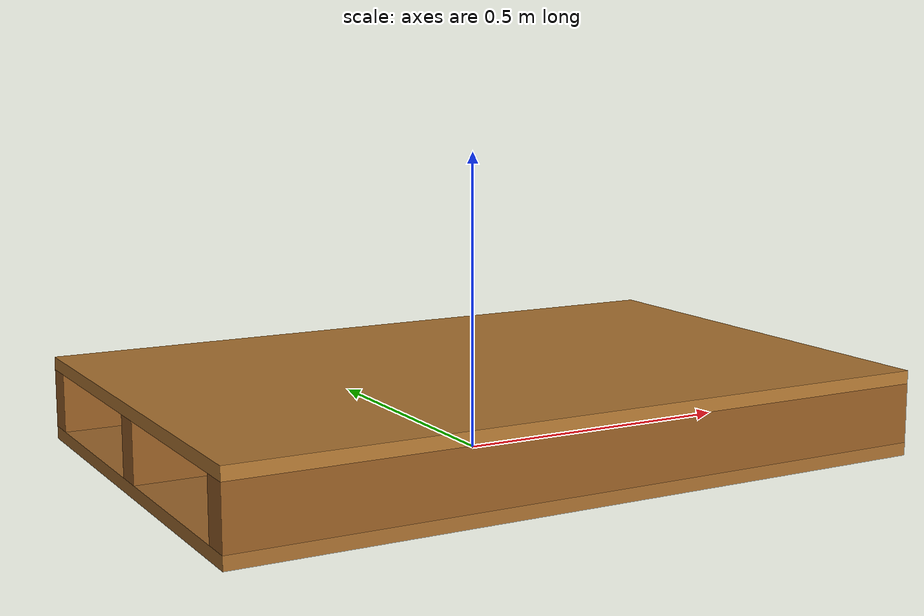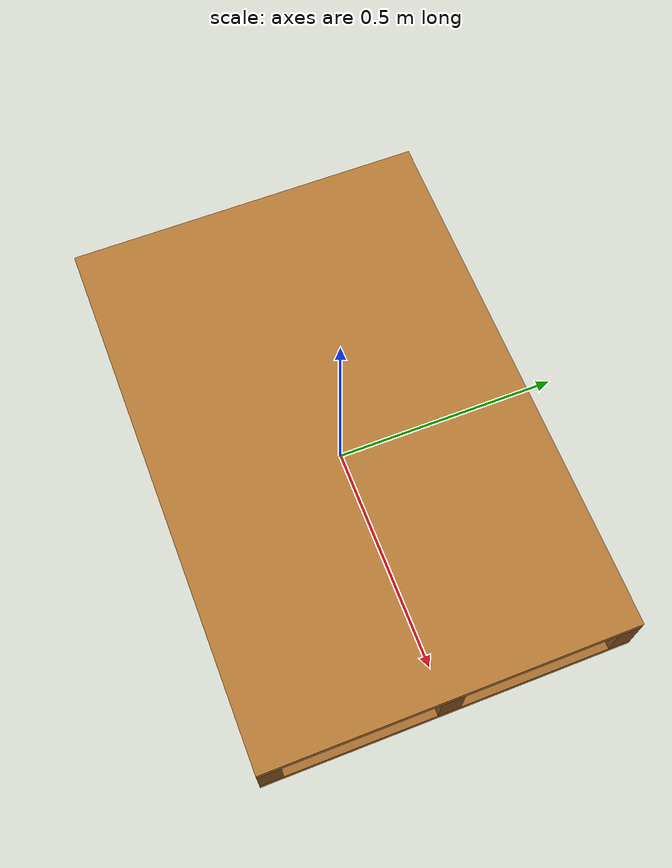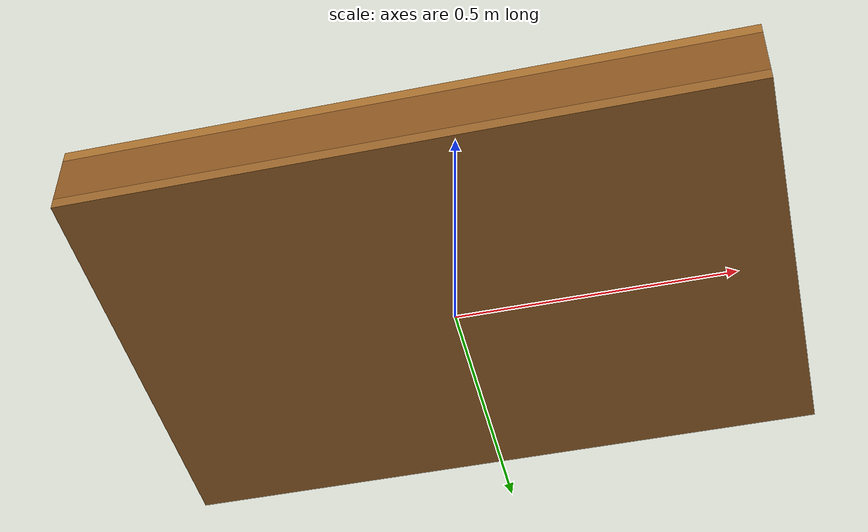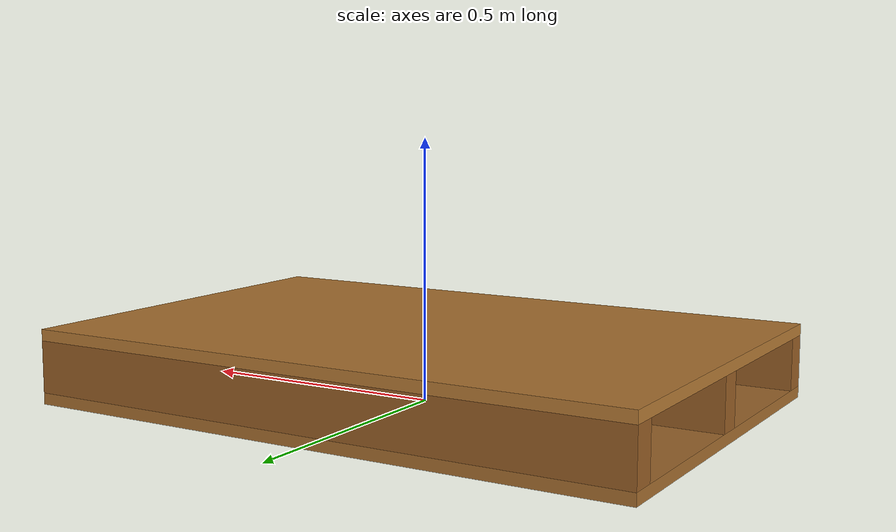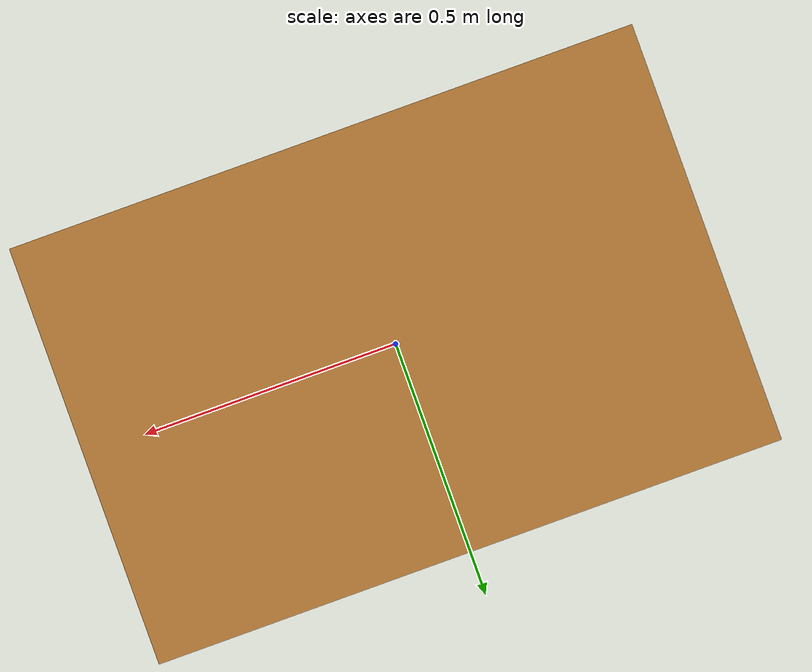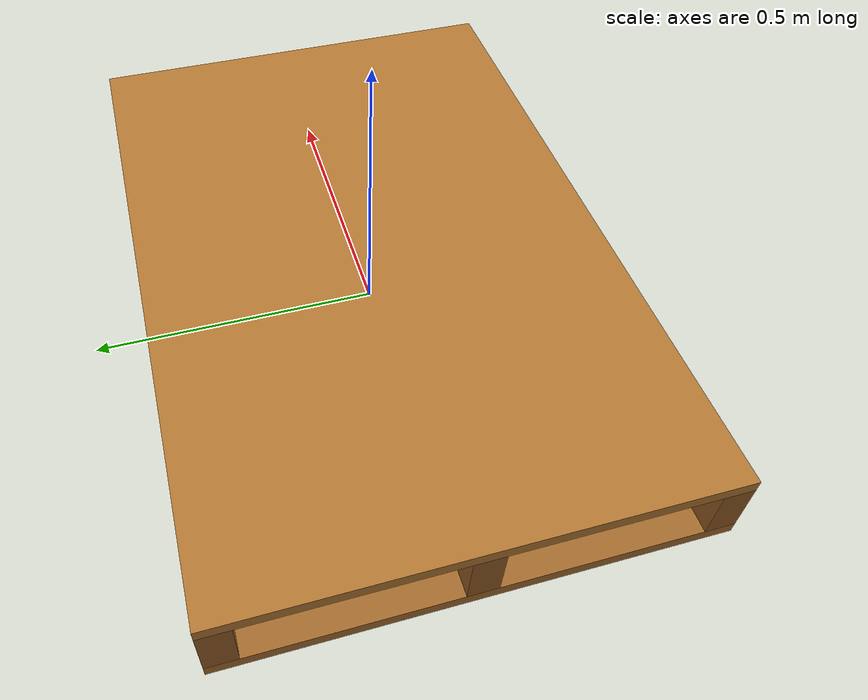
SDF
<?xml version="1.0"?>
<sdf version="1.10">
  <model name="euro_pallet" canonical_link="body">
    <static>false</static>
    <self_collide>false</self_collide>

    <!-- Permit the physics engine to sleep the pallet when it is at rest. -->
    <allow_auto_disable>true</allow_auto_disable>

    <!-- Named reference frame for the box-loading surface. -->
    <frame name="loading_surface" attached_to="body">
      <pose relative_to="body">0 0 0.144 0 0 0</pose>
    </frame>

    <link name="body">
      <gravity>true</gravity>
      <kinematic>false</kinematic>

      <inertial>
        <pose>0 0 0.072 0 0 0</pose>
        <mass>25</mass>
        <inertia>
          <ixx>1.70896776228</ixx>
          <ixy>0</ixy>
          <ixz>0</ixz>
          <iyy>3.07216082337</iyy>
          <iyz>0</iyz>
          <izz>4.63680693891</izz>
        </inertia>
      </inertial>

      <!-- Bottom deck: centre at 11 mm above the model origin. -->
      <collision name="bottom_deck_collision">
        <pose>0 0 0.011 0 0 0</pose>
        <geometry>
          <box>
            <size>1.2 0.8 0.022</size>
          </box>
        </geometry>
        <surface>
          <friction>
            <ode>
              <mu>0.65</mu>
              <mu2>0.65</mu2>
            </ode>
          </friction>
          <bounce>
            <restitution_coefficient>0</restitution_coefficient>
            <threshold>100000</threshold>
          </bounce>
          <contact>
            <ode>
              <kp>1000000</kp>
              <kd>100</kd>
              <max_vel>1</max_vel>
              <min_depth>0.0005</min_depth>
            </ode>
          </contact>
        </surface>
      </collision>

      <visual name="bottom_deck_visual">
        <pose>0 0 0.011 0 0 0</pose>
        <geometry>
          <box>
            <size>1.2 0.8 0.022</size>
          </box>
        </geometry>
        <material>
          <ambient>0.46 0.28 0.10 1</ambient>
          <diffuse>0.64 0.42 0.18 1</diffuse>
          <specular>0.03 0.03 0.03 1</specular>
        </material>
      </visual>

      <!--
        Three 50 x 100 mm longitudinal stringers. They run along X, so the
        two fork channels are open from either 800 mm end of the pallet.
      -->
      <collision name="left_stringer_collision">
        <pose>0 -0.375 0.072 0 0 0</pose>
        <geometry>
          <box>
            <size>1.2 0.05 0.1</size>
          </box>
        </geometry>
        <surface>
          <friction>
            <ode>
              <mu>0.65</mu>
              <mu2>0.65</mu2>
            </ode>
          </friction>
          <bounce>
            <restitution_coefficient>0</restitution_coefficient>
            <threshold>100000</threshold>
          </bounce>
          <contact>
            <ode>
              <kp>1000000</kp>
              <kd>100</kd>
              <max_vel>1</max_vel>
              <min_depth>0.0005</min_depth>
            </ode>
          </contact>
        </surface>
      </collision>

      <visual name="left_stringer_visual">
        <pose>0 -0.375 0.072 0 0 0</pose>
        <geometry>
          <box>
            <size>1.2 0.05 0.1</size>
          </box>
        </geometry>
        <material>
          <ambient>0.42 0.25 0.09 1</ambient>
          <diffuse>0.58 0.36 0.14 1</diffuse>
          <specular>0.03 0.03 0.03 1</specular>
        </material>
      </visual>

      <collision name="centre_stringer_collision">
        <pose>0 0 0.072 0 0 0</pose>
        <geometry>
          <box>
            <size>1.2 0.05 0.1</size>
          </box>
        </geometry>
        <surface>
          <friction>
            <ode>
              <mu>0.65</mu>
              <mu2>0.65</mu2>
            </ode>
          </friction>
          <bounce>
            <restitution_coefficient>0</restitution_coefficient>
            <threshold>100000</threshold>
          </bounce>
          <contact>
            <ode>
              <kp>1000000</kp>
              <kd>100</kd>
              <max_vel>1</max_vel>
              <min_depth>0.0005</min_depth>
            </ode>
          </contact>
        </surface>
      </collision>

      <visual name="centre_stringer_visual">
        <pose>0 0 0.072 0 0 0</pose>
        <geometry>
          <box>
            <size>1.2 0.05 0.1</size>
          </box>
        </geometry>
        <material>
          <ambient>0.42 0.25 0.09 1</ambient>
          <diffuse>0.58 0.36 0.14 1</diffuse>
          <specular>0.03 0.03 0.03 1</specular>
        </material>
      </visual>

      <collision name="right_stringer_collision">
        <pose>0 0.375 0.072 0 0 0</pose>
        <geometry>
          <box>
            <size>1.2 0.05 0.1</size>
          </box>
        </geometry>
        <surface>
          <friction>
            <ode>
              <mu>0.65</mu>
              <mu2>0.65</mu2>
            </ode>
          </friction>
          <bounce>
            <restitution_coefficient>0</restitution_coefficient>
            <threshold>100000</threshold>
          </bounce>
          <contact>
            <ode>
              <kp>1000000</kp>
              <kd>100</kd>
              <max_vel>1</max_vel>
              <min_depth>0.0005</min_depth>
            </ode>
          </contact>
        </surface>
      </collision>

      <visual name="right_stringer_visual">
        <pose>0 0.375 0.072 0 0 0</pose>
        <geometry>
          <box>
            <size>1.2 0.05 0.1</size>
          </box>
        </geometry>
        <material>
          <ambient>0.42 0.25 0.09 1</ambient>
          <diffuse>0.58 0.36 0.14 1</diffuse>
          <specular>0.03 0.03 0.03 1</specular>
        </material>
      </visual>

      <!-- Top deck: top face is exactly z=144 mm. -->
      <collision name="top_deck_collision">
        <pose>0 0 0.133 0 0 0</pose>
        <geometry>
          <box>
            <size>1.2 0.8 0.022</size>
          </box>
        </geometry>
        <surface>
          <friction>
            <ode>
              <mu>0.65</mu>
              <mu2>0.65</mu2>
            </ode>
          </friction>
          <bounce>
            <restitution_coefficient>0</restitution_coefficient>
            <threshold>100000</threshold>
          </bounce>
          <contact>
            <ode>
              <kp>1000000</kp>
              <kd>100</kd>
              <max_vel>1</max_vel>
              <min_depth>0.0005</min_depth>
            </ode>
          </contact>
        </surface>
      </collision>

      <visual name="top_deck_visual">
        <pose>0 0 0.133 0 0 0</pose>
        <geometry>
          <box>
            <size>1.2 0.8 0.022</size>
          </box>
        </geometry>
        <material>
          <ambient>0.50 0.31 0.11 1</ambient>
          <diffuse>0.70 0.47 0.20 1</diffuse>
          <specular>0.03 0.03 0.03 1</specular>
        </material>
      </visual>
    </link>
  </model>
</sdf>
